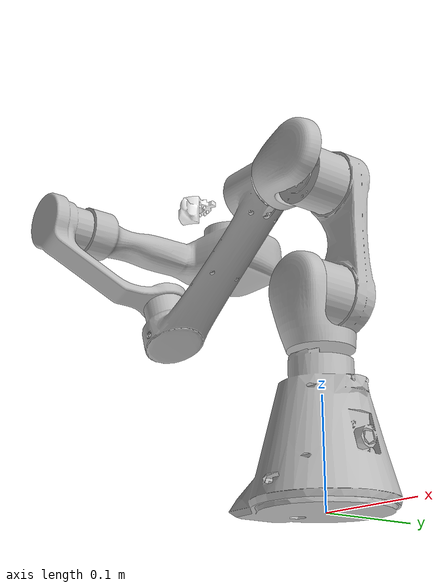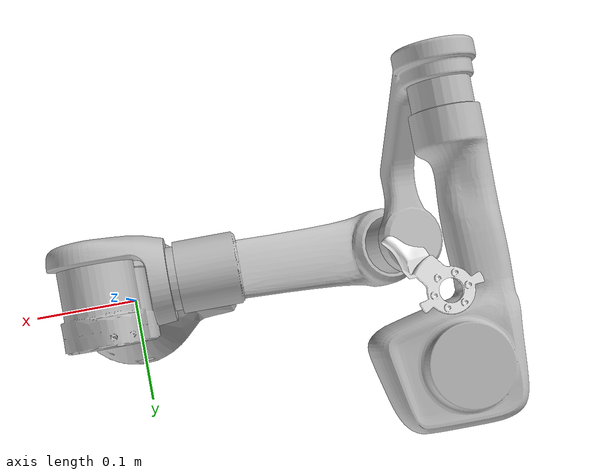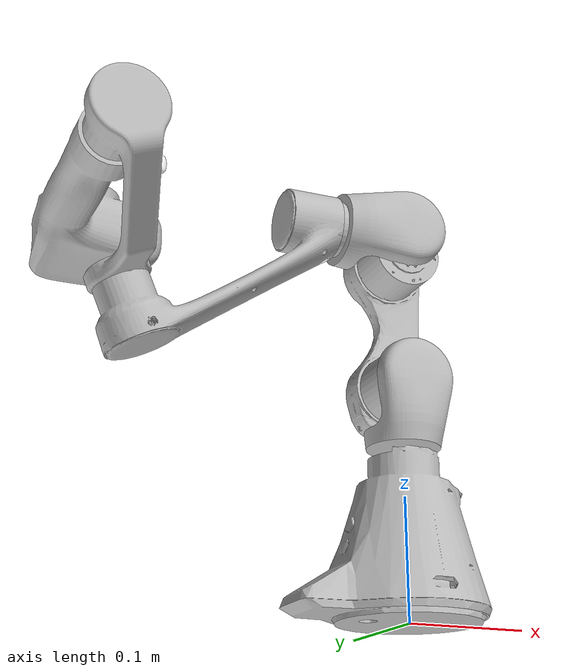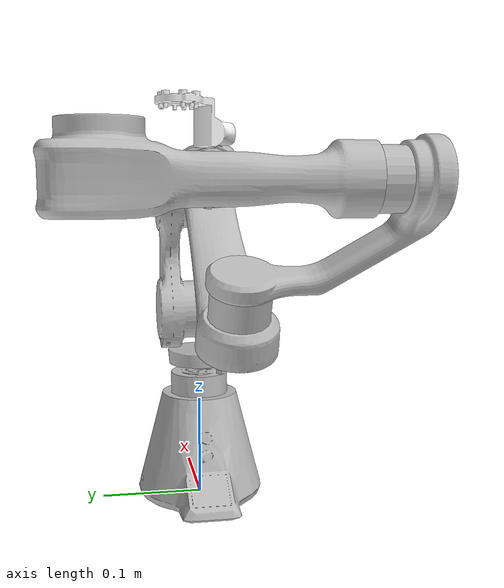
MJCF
<?xml version='1.0' encoding='utf-8'?>
<mujoco model="nexus-arm">
  <compiler angle="radian" meshdir="../meshes" />
  <asset>
    <mesh name="base_link" content_type="model/stl" file="base_link.STL" />
    <mesh name="link1_Link" content_type="model/stl" file="link1_Link.STL" />
    <mesh name="link2_Link" content_type="model/stl" file="link2_Link.STL" />
    <mesh name="link3_Link" content_type="model/stl" file="link3_Link.STL" />
    <mesh name="link4_Link" content_type="model/stl" file="link4_Link.STL" />
    <mesh name="link5_Link" content_type="model/stl" file="link5_Link.STL" />
    <mesh name="link6_Link" content_type="model/stl" file="link6_Link.STL" />
    <mesh name="gripper_Link" content_type="model/stl" file="gripper_Link.STL" />
    <mesh name="force_Link" content_type="model/stl" file="force_Link.STL" />
  </asset>
  <worldbody>
    <geom type="mesh" rgba="0.752941 0.752941 0.752941 1" mesh="base_link" contype="0" conaffinity="0" density="0" group="1" />
    <body name="link1_Link" pos="0 0 0.13305">
      <inertial pos="-0.00016706 -0.0151728 0.0310906" quat="0.679816 -0.194949 0.198043 0.678693" mass="0.0871201" diaginertia="9.04087e-05 8.0471e-05 3.50503e-05" />
      <joint name="link1_Joint" pos="0 0 0" axis="0 0 1" range="-1.5708 1.5708" actuatorfrcrange="-9 9" damping="0.45" frictionloss="0.09" armature="0.009" />
      <geom type="mesh" rgba="0.75294 0.75294 0.75294 1" mesh="link1_Link" />
      <body name="link2_Link" pos="0 -0.026125 0.0605">
        <inertial pos="0.00106133 0.029873 0.0650682" quat="0.991439 -0.000238542 0.000248736 0.130574" mass="0.856247" diaginertia="0.0039081 0.00382712 0.000447008" />
        <joint name="link2_Joint" pos="0 0 0" axis="0 1 0" range="-1.2217 0.6981" actuatorfrcrange="-9 9" damping="0.45" frictionloss="0.09" armature="0.009" />
        <geom type="mesh" rgba="0.752941 0.752941 0.752941 1" mesh="link2_Link" />
        <body name="link3_Link" pos="0 0 0.13">
          <inertial pos="-0.0685324 0.021125 9.764e-05" quat="0.375497 0.459771 0.535332 0.600859" mass="0.256533" diaginertia="0.000353452 0.000347868 8.92804e-05" />
          <joint name="link3_Joint" pos="0 0 0" axis="0 1 0" range="-0.7854 1.3963" actuatorfrcrange="-9 9" damping="0.45" frictionloss="0.09" armature="0.009" />
          <geom type="mesh" rgba="0.752941 0.752941 0.752941 1" mesh="link3_Link" />
          <body name="link4_Link" pos="-0.09 0.026125 0">
            <inertial pos="-0.111491 3.179e-05 -0.0691476" quat="0.388407 0.584041 0.604799 0.377167" mass="0.302327" diaginertia="0.00127663 0.00119376 0.000178142" />
            <joint name="link4_Joint" pos="0 0 0" axis="1 0 0" range="-0.6981 2.0944" actuatorfrcrange="-0.8 0.8" damping="0.05" frictionloss="0.01" armature="0.0008" />
            <geom type="mesh" rgba="0.75294 0.75294 0.75294 1" mesh="link4_Link" />
            <body name="link5_Link" pos="-0.149385 0 -0.0739104">
              <inertial pos="-0.0249397 -0.0775073 0.059897" quat="0.789289 0.575046 0.215097 -0.00882033" mass="0.268974" diaginertia="0.000575218 0.000350975 0.000273607" />
              <joint name="link5_Joint" pos="0 0 0" axis="-0.382683 0 0.92388" range="-0.8727 0.8727" actuatorfrcrange="-0.8 0.8" damping="0.05" frictionloss="0.01" armature="0.0008" />
              <geom type="mesh" rgba="0.752941 0.752941 0.752941 1" mesh="link5_Link" />
              <body name="link6_Link" pos="-0.030615 -0.08 0.07391">
                <inertial pos="0.0179642 0.149509 -1.51109e-05" quat="0.446525 0.549666 -0.44602 0.547311" mass="0.378422" diaginertia="0.0013142 0.00121891 0.000247145" />
                <joint name="link6_Joint" pos="0 0 0" axis="0 1 0" range="-0.7854 3.1416" actuatorfrcrange="-0.8 0.8" damping="0.05" frictionloss="0.01" armature="0.0008" />
                <geom type="mesh" rgba="0.75294 0.75294 0.75294 1" mesh="link6_Link" />
                <geom pos="0 0.08 0" type="mesh" rgba="0.792157 0.819608 0.933333 1" mesh="force_Link" />
                <site name="ee_link6" pos="0 0.08 0" size="0.01" rgba="1 0 0 0.5" type="sphere" />
                <body name="gripper_Link" pos="0.029809 0.1198 0">
                  <inertial pos="-0.00285473 0.0104286 0" quat="0.562791 0.428096 -0.562791 0.428096" mass="0.00447781" diaginertia="7.9e-07 7.03238e-07 2.36762e-07" />
                  <joint name="gripper_Joint" pos="0 0 0" axis="0.978148 0.20791 0" type="slide" range="0 0.03" actuatorfrcrange="-0.8 0.8" damping="0.08" frictionloss="0.016" armature="0.008" />
                  <geom type="mesh" rgba="1 1 1 1" mesh="gripper_Link" />
                </body>
              </body>
            </body>
          </body>
        </body>
      </body>
    </body>
  </worldbody>
</mujoco>
